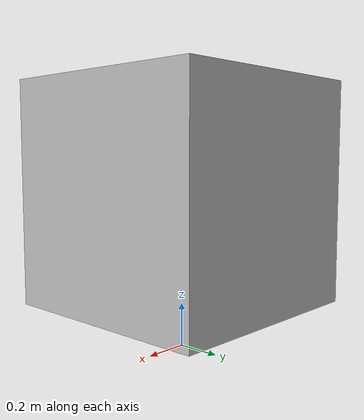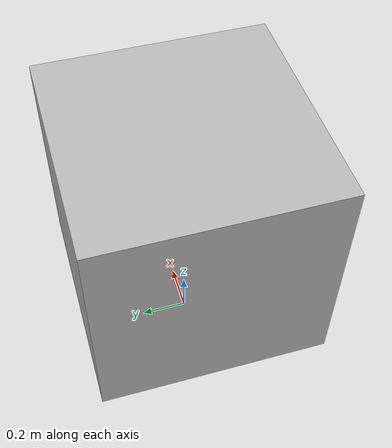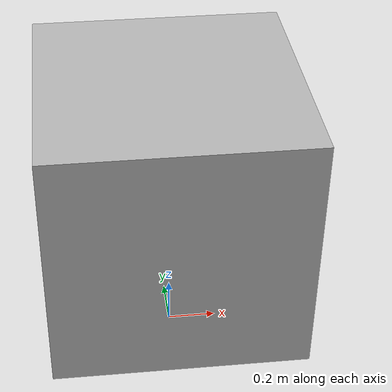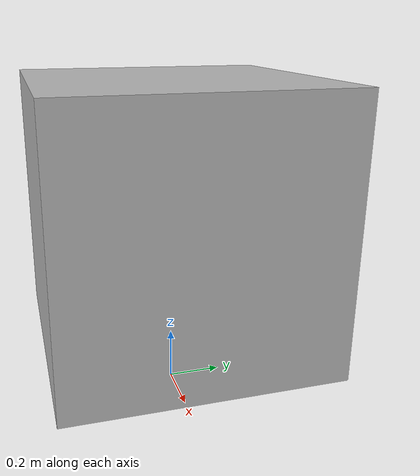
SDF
<?xml version='1.0'?>
<sdf version='1.4'>
	<model name="box">
		<link name="box_chassis">
			<pose>0 0 0.7 0 0 0</pose>
			<inertial>
					<mass>200</mass>
			</inertial>
			<collision name="collision">
				<geometry>
					<box>
						<size>1 1 1</size>
					</box>
				</geometry>
				<surface>
					<friction>
						<ode>
							<mu>10000</mu>
							<mu2>10000</mu2>
							<slip1>0</slip1>
							<slip2>0</slip2>
						</ode>
					</friction>
				</surface>
			</collision>
			<visual name="visual">
				<geometry>
					<box>
						<size>1 1 1</size>
					</box>
				</geometry>
			</visual>
		</link>
	</model>
</sdf>
